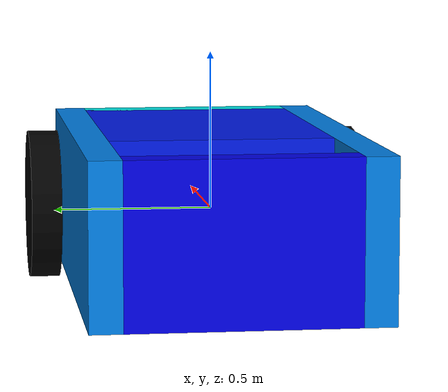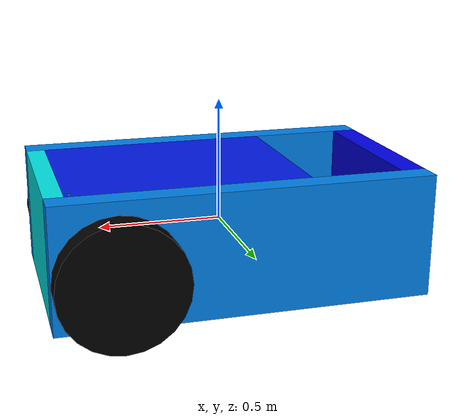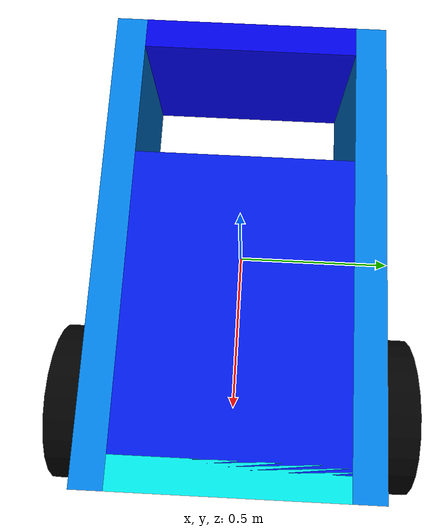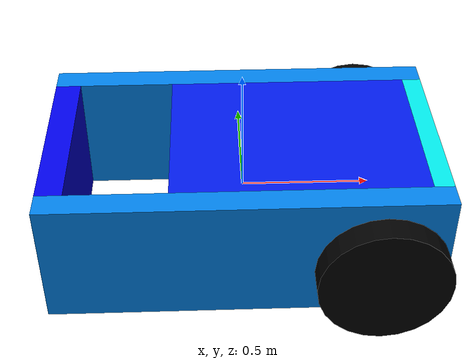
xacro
<?xml version="1.0"?>
<robot name="bot" xmlns:xacro="http://ros.org/wiki/xacro">

	<!-- Define intertial property macros  -->
	<xacro:macro name="box_inertia" params="m w h d">
		<inertial>
		<origin xyz="0 0 0" rpy="${pi/2} 0 ${pi/2}"/>
		<mass value="${m}"/>
		<inertia ixx="${(m/12) * (h*h + d*d)}" ixy="0.0" ixz="0.0" iyy="${(m/12) * (w*w + d*d)}" iyz="0.0" izz="${(m/12) * (w*w + h*h)}"/>
		</inertial>
	</xacro:macro>

	<xacro:macro name="cylinder_inertia" params="m r h">
		<inertial>
		<origin xyz="0 0 0" rpy="${pi/2} 0 0" />
		<mass value="${m}"/>
		<inertia ixx="${(m/12) * (3*r*r + h*h)}" ixy = "0" ixz = "0" iyy="${(m/12) * (3*r*r + h*h)}" iyz = "0" izz="${(m/2) * (r*r)}"/>
		</inertial>
	</xacro:macro>

	<xacro:macro name="sphere_inertia" params="m r">
		<inertial>
		<mass value="${m}"/>
		<inertia ixx="${(2/5) * m * (r*r)}" ixy="0.0" ixz="0.0" iyy="${(2/5) * m * (r*r)}" iyz="0.0" izz="${(2/5) * m * (r*r)}"/>
		</inertial>
	</xacro:macro>

 	<link name="base_link">
		<visual>
		    <origin xyz="0 0.4 0" rpy="0 0 0"/>
			<geometry>
				<box size="1.5 0.1 0.5"/>
			</geometry>
			<material name="c1">
	       		<color rgba="0 0.5 0.9 1.0"/>
	     	</material>
		</visual>
  		<visual>
		    <origin xyz="0 -0.4 0" rpy="0 0 0"/>
			<geometry>
				<box size="1.5 0.1 0.5"/>
			</geometry>
			<material name="c">
	       		<color rgba="0 0.5 0.9 1.0"/>
	     	</material>
		</visual>
  		<visual>
		    <origin xyz="0.7 0 0" rpy="0 0 0"/>
			<geometry>
				<box size="0.1 0.7 0.5"/>
			</geometry>
			<material name="c2">
	       		<color rgba="0 0.9 0.9 1.0"/>
	     	</material>
		</visual>
  		<visual>
          	<origin xyz="0.2 0 0" rpy="0 0 0"/>
			<geometry>
				<box size="0.95 0.7 0.5"/>
			</geometry>
			<material name="c">
	       		<color rgba="0 0.1 0.9 1.0"/>
	     	</material>
		</visual>
		<collision>
		    <origin xyz="-0.7 0 0" rpy="0 0 0"/>
			<geometry>
				<box size="0.1 0.7 0.5"/>
			</geometry>
		</collision>
		<collision>
		    <origin xyz="0 0.4 0" rpy="0 0 0"/>
			<geometry>
				<box size="1.5 0.1 0.5"/>
			</geometry>
		</collision>
		<collision>
		    <origin xyz="0 -0.4 0" rpy="0 0 0"/>
			<geometry>
				<box size="1.5 0.1 0.5"/>
			</geometry>
		</collision>
		<collision>
			<origin xyz="0.2 0 0" rpy="0 0 0"/>
			<geometry>
				<box size="0.95 0.7 0.5"/>
			</geometry>
		</collision>

		<xacro:box_inertia m="5.0" w="3." d="2." h="0.5"/>
  	</link>

	<link name="back_left_wheel">
  		<visual>
		    <origin xyz="0 0 0" rpy="0 0 0"/>
			<geometry>
				<cylinder radius="0.25" length="0.1"/>
			</geometry>
			<material name="d">
	       		<color rgba="0 0 0 0"/>
	     	</material>
		</visual>
		<collision>
		    <origin xyz="0 0 0" rpy="0 0 0"/>
			<geometry>
				<cylinder radius="0.25" length="0.1"/>
			</geometry>
		</collision>
		<xacro:cylinder_inertia m="2" r="0.25" h="0.2"/>
  	</link>

	<gazebo reference="back_left_wheel">
		<mu1>1.2</mu1>
		<mu2>1.2</mu2>
		<material>Gazebo/Blue</material>
		<kp>500000.0</kp>
		<kd>10.0</kd>
		<minDepth>0.001</minDepth>
		<maxVel>0.1</maxVel>
  	</gazebo>

	<link name="back_right_wheel">
  		<visual>
		    <origin xyz="0 0 0" rpy="0 0 0"/>
			<geometry>
				<cylinder radius="0.25" length="0.1"/>
			</geometry>
			<material name="d">
	       		<color rgba="0 0 0 0"/>
	     	</material>
		</visual>
		<collision>
		    <origin xyz="0 0 0" rpy="0 0 0"/>
			<geometry>
				<cylinder radius="0.25" length="0.1"/>
			</geometry>
		</collision>
		<xacro:cylinder_inertia m="2" r="0.25" h="0.1"/>
  	</link>

	<gazebo reference="back_right_wheel">
		<mu1>1.2</mu1>
		<mu2>1.2</mu2>
		<material>Gazebo/Blue</material>
		<kp>500000.0</kp>
		<kd>10.0</kd>
		<minDepth>0.001</minDepth>
		<maxVel>0.1</maxVel>
  	</gazebo>

	<link name="mid_wheel">
  		<visual>
		    <origin xyz="0 0 0" rpy="0 0 0"/>
			<geometry>
				<sphere radius="0.05"/>
			</geometry>
			<material name="d">
	       		<color rgba="0 0 0 0"/>
	     	</material>
		</visual>
		<collision>
		    <origin xyz="0 0 0" rpy="0 0 0"/>
			<geometry>
				<sphere radius="0.05"/>
			</geometry>
		</collision>
		<xacro:sphere_inertia m="1" r="0.05"/>
  	</link>

	<gazebo reference="mid_wheel">
		<mu1>0.01</mu1>
		<mu2>0.01</mu2>
		<material>Gazebo/SkyBlue</material>
		<kp>500000.0</kp>
		<kd>1.0</kd>
		<minDepth>0.001</minDepth>
		<maxVel>0.1</maxVel>
	</gazebo>

	<link name="front_panel">
  		<visual>
		    <origin xyz="-0.7 0 0" rpy="0 0 0"/>
			<geometry>
				<box size="0.1 0.7 0.5"/>
			</geometry>
			<material name="f">
	       		<color rgba="0 0 0.9 1.0"/>
	     	</material>
		</visual>
		<collision>
		    <origin xyz="-0.7 0 0" rpy="0 0 0"/>
			<geometry>
				<box size="0.1 0.7 0.5"/>
			</geometry>
		</collision>
		<xacro:box_inertia m="1.0" w="0.7" d="0.1" h="0.5"/>
  	</link>

	<gazebo reference="base_link">
		<material>Gazebo/Red</material>
	</gazebo>

	<gazebo reference="front_panel">
		<material>Gazebo/Red</material>
	</gazebo>

	<joint name="back_right_joint" type="continuous">
		<origin xyz="0.5 -0.51 -0.05" rpy="1.57 0 0"/>
        <parent link="base_link"/>
        <child link="back_right_wheel"/>
		<axis xyz="0 0 1"/>
		<limit effort="30" velocity="10.0"/>
 	</joint>
	<joint name="back_left_joint" type="continuous">
		<origin xyz="0.5 0.51 -0.05" rpy="1.57 0 0"/>
        <parent link="base_link"/>
        <child link="back_left_wheel"/>
		<axis xyz="0 0 1"/>
		<limit effort="30" velocity="10.0"/>
 	</joint>
	<joint name="mid_wheel_joint" type="continuous">
		<origin xyz="0 0 -0.25" rpy="0 0 0"/>
        <parent link="base_link"/>
        <child link="mid_wheel"/>
 	</joint>
	<joint name="front_panel_joint" type="prismatic">
        <parent link="base_link"/>
        <child link="front_panel"/>
		<axis xyz="0 0 1"/>
		<limit effort="10" velocity="1.0" lower="0" upper="0.25" />
 	</joint>

<!-- *********************** CONTROLEUR ******************************  -->

  	<gazebo>
		<plugin name='diff_drive' filename='libgazebo_ros_diff_drive.so'>
			<!-- wheels -->
			<left_joint>back_left_joint</left_joint>
			<right_joint>back_right_joint</right_joint>
			<!-- kinematics -->
			<wheel_separation>1.6</wheel_separation>
			<wheel_diameter>0.5</wheel_diameter>
			<!-- limits -->
			<max_wheel_torque>20</max_wheel_torque>
			<max_wheel_acceleration>1.0</max_wheel_acceleration>
			<!-- output -->
			<publish_odom>true</publish_odom>
			<publish_odom_tf>true</publish_odom_tf>
			<publish_wheel_tf>true</publish_wheel_tf>
			<robot_base_frame>base_link</robot_base_frame>
		</plugin>
  	</gazebo>

	<gazebo>
		<plugin name="imu_plugin" filename="libgazebo_ros_imu.so">
		<alwaysOn>true</alwaysOn>
		<bodyName>base_link</bodyName>
		<topicName>imu</topicName>
		<serviceName>imu_service</serviceName>
		<gaussianNoise>0.0</gaussianNoise>
		<updateRate>20.0</updateRate>
		</plugin>
  	</gazebo>

</robot>
